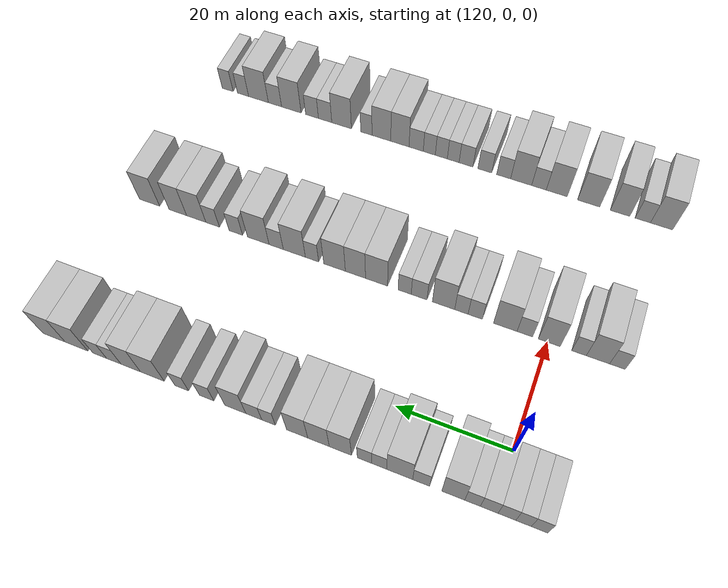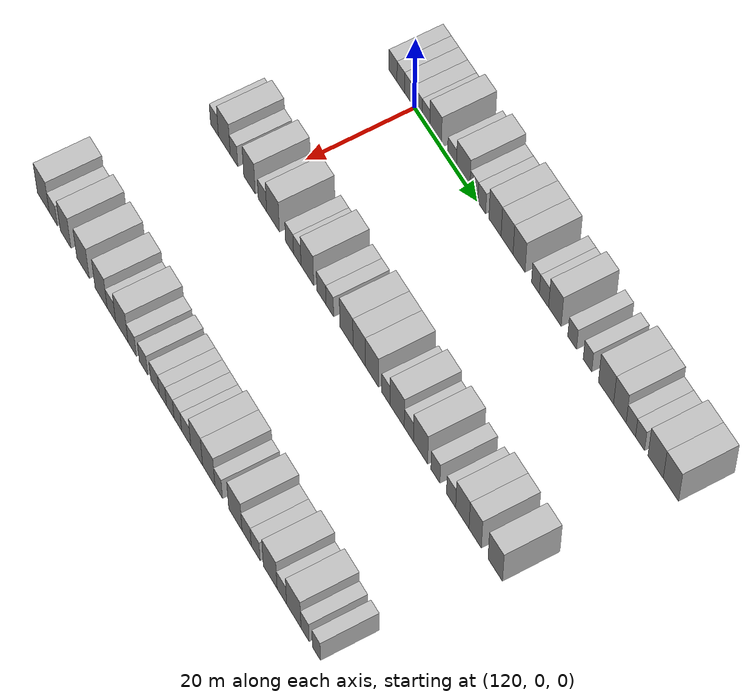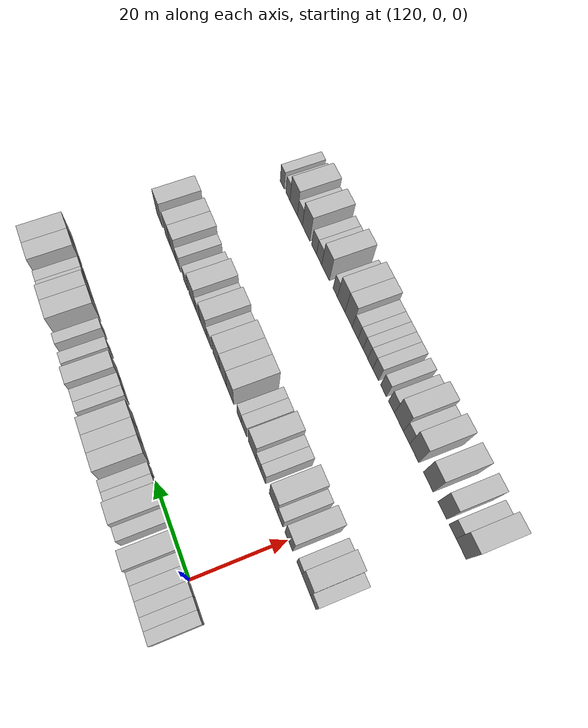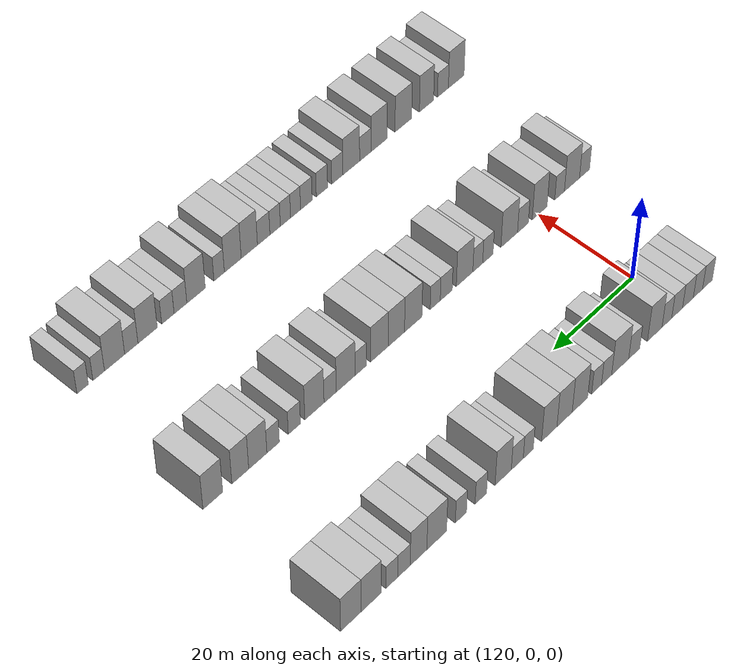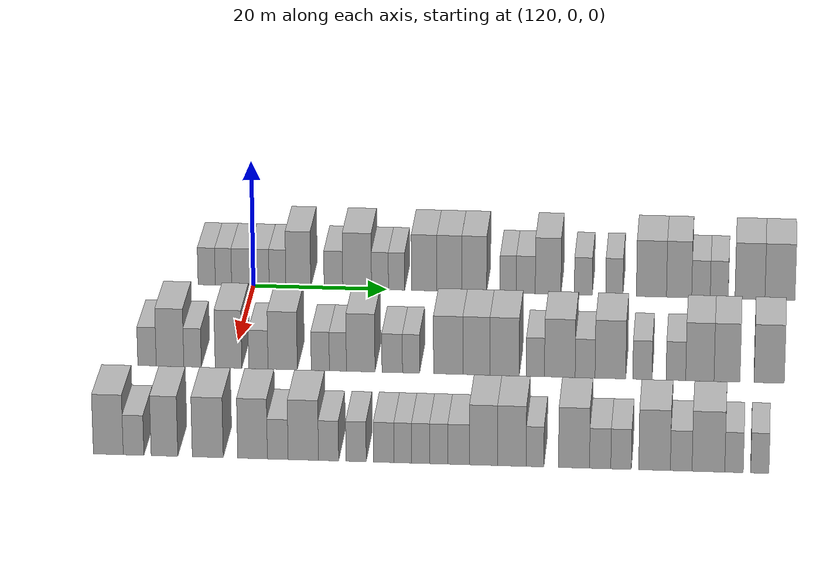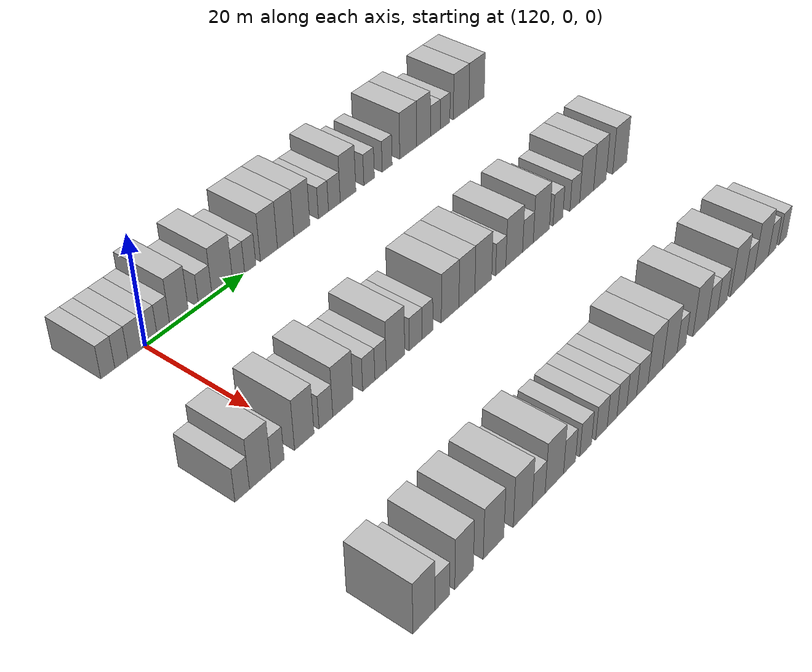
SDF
<sdf version="1.6">
 <world name="default">
  <model name="building_776">
   <static>1</static>
   <pose>115.0000 -7.0693 0 0.000000 0.000000 0.000000</pose>
   <link name="link">
    <pose>0 0 3.00 0 0 0</pose>
    <collision name="collision"><geometry><box><size>10.0000 2.5950 6.0000</size></box></geometry></collision>
    <visual name="visual">
     <cast_shadows>0</cast_shadows>
     <geometry><box><size>10.0000 2.5950 6.0000</size></box></geometry>
     <material>
      <script>
       <uri>model://HANNAS_wall/materials/scripts</uri>
       <uri>model://HANNAS_wall/materials/textures</uri>
       <name>vrc/HANNAS_wall</name>
      </script>
     </material>
    </visual>
   </link>
  </model>
  <model name="building_777">
   <static>1</static>
   <pose>115.0000 -4.5453 0 0.000000 0.000000 0.000000</pose>
   <link name="link">
    <pose>0 0 3.00 0 0 0</pose>
    <collision name="collision"><geometry><box><size>10.0000 2.4531 6.0000</size></box></geometry></collision>
    <visual name="visual">
     <cast_shadows>0</cast_shadows>
     <geometry><box><size>10.0000 2.4531 6.0000</size></box></geometry>
     <material>
      <script>
       <uri>model://HANNAS_wall/materials/scripts</uri>
       <uri>model://HANNAS_wall/materials/textures</uri>
       <name>vrc/HANNAS_wall</name>
      </script>
     </material>
    </visual>
   </link>
  </model>
  <model name="building_778">
   <static>1</static>
   <pose>115.0000 -1.9095 0 0.000000 0.000000 0.000000</pose>
   <link name="link">
    <pose>0 0 3.00 0 0 0</pose>
    <collision name="collision"><geometry><box><size>10.0000 2.8186 6.0000</size></box></geometry></collision>
    <visual name="visual">
     <cast_shadows>0</cast_shadows>
     <geometry><box><size>10.0000 2.8186 6.0000</size></box></geometry>
     <material>
      <script>
       <uri>model://HANNAS_wall/materials/scripts</uri>
       <uri>model://HANNAS_wall/materials/textures</uri>
       <name>vrc/HANNAS_wall</name>
      </script>
     </material>
    </visual>
   </link>
  </model>
  <model name="building_779">
   <static>1</static>
   <pose>115.0000 0.9136 0 0.000000 0.000000 0.000000</pose>
   <link name="link">
    <pose>0 0 3.00 0 0 0</pose>
    <collision name="collision"><geometry><box><size>10.0000 2.8276 6.0000</size></box></geometry></collision>
    <visual name="visual">
     <cast_shadows>0</cast_shadows>
     <geometry><box><size>10.0000 2.8276 6.0000</size></box></geometry>
     <material>
      <script>
       <uri>model://HANNAS_wall/materials/scripts</uri>
       <uri>model://HANNAS_wall/materials/textures</uri>
       <name>vrc/HANNAS_wall</name>
      </script>
     </material>
    </visual>
   </link>
  </model>
  <model name="building_780">
   <static>1</static>
   <pose>115.0000 3.5864 0 0.000000 0.000000 0.000000</pose>
   <link name="link">
    <pose>0 0 3.00 0 0 0</pose>
    <collision name="collision"><geometry><box><size>10.0000 2.5179 6.0000</size></box></geometry></collision>
    <visual name="visual">
     <cast_shadows>0</cast_shadows>
     <geometry><box><size>10.0000 2.5179 6.0000</size></box></geometry>
     <material>
      <script>
       <uri>model://HANNAS_wall/materials/scripts</uri>
       <uri>model://HANNAS_wall/materials/textures</uri>
       <name>vrc/HANNAS_wall</name>
      </script>
     </material>
    </visual>
   </link>
  </model>
  <model name="building_781">
   <static>1</static>
   <pose>115.0000 6.7138 0 0.000000 0.000000 0.000000</pose>
   <link name="link">
    <pose>0 0 4.50 0 0 0</pose>
    <collision name="collision"><geometry><box><size>10.0000 3.7371 9.0000</size></box></geometry></collision>
    <visual name="visual">
     <cast_shadows>0</cast_shadows>
     <geometry><box><size>10.0000 3.7371 9.0000</size></box></geometry>
     <material>
      <script>
       <uri>model://HANNAS_wall/materials/scripts</uri>
       <uri>model://HANNAS_wall/materials/textures</uri>
       <name>vrc/HANNAS_wall</name>
      </script>
     </material>
    </visual>
   </link>
  </model>
  <model name="building_782">
   <static>1</static>
   <pose>115.0000 11.9819 0 0.000000 0.000000 0.000000</pose>
   <link name="link">
    <pose>0 0 3.00 0 0 0</pose>
    <collision name="collision"><geometry><box><size>10.0000 2.7990 6.0000</size></box></geometry></collision>
    <visual name="visual">
     <cast_shadows>0</cast_shadows>
     <geometry><box><size>10.0000 2.7990 6.0000</size></box></geometry>
     <material>
      <script>
       <uri>model://HANNAS_wall/materials/scripts</uri>
       <uri>model://HANNAS_wall/materials/textures</uri>
       <name>vrc/HANNAS_wall</name>
      </script>
     </material>
    </visual>
   </link>
  </model>
  <model name="building_783">
   <static>1</static>
   <pose>115.0000 15.5402 0 0.000000 0.000000 0.000000</pose>
   <link name="link">
    <pose>0 0 4.50 0 0 0</pose>
    <collision name="collision"><geometry><box><size>10.0000 4.3176 9.0000</size></box></geometry></collision>
    <visual name="visual">
     <cast_shadows>0</cast_shadows>
     <geometry><box><size>10.0000 4.3176 9.0000</size></box></geometry>
     <material>
      <script>
       <uri>model://HANNAS_wall/materials/scripts</uri>
       <uri>model://HANNAS_wall/materials/textures</uri>
       <name>vrc/HANNAS_wall</name>
      </script>
     </material>
    </visual>
   </link>
  </model>
  <model name="building_784">
   <static>1</static>
   <pose>115.0000 18.9699 0 0.000000 0.000000 0.000000</pose>
   <link name="link">
    <pose>0 0 3.00 0 0 0</pose>
    <collision name="collision"><geometry><box><size>10.0000 2.5419 6.0000</size></box></geometry></collision>
    <visual name="visual">
     <cast_shadows>0</cast_shadows>
     <geometry><box><size>10.0000 2.5419 6.0000</size></box></geometry>
     <material>
      <script>
       <uri>model://HANNAS_wall/materials/scripts</uri>
       <uri>model://HANNAS_wall/materials/textures</uri>
       <name>vrc/HANNAS_wall</name>
      </script>
     </material>
    </visual>
   </link>
  </model>
  <model name="building_785">
   <static>1</static>
   <pose>115.0000 21.4618 0 0.000000 0.000000 0.000000</pose>
   <link name="link">
    <pose>0 0 3.00 0 0 0</pose>
    <collision name="collision"><geometry><box><size>10.0000 2.4420 6.0000</size></box></geometry></collision>
    <visual name="visual">
     <cast_shadows>0</cast_shadows>
     <geometry><box><size>10.0000 2.4420 6.0000</size></box></geometry>
     <material>
      <script>
       <uri>model://HANNAS_wall/materials/scripts</uri>
       <uri>model://HANNAS_wall/materials/textures</uri>
       <name>vrc/HANNAS_wall</name>
      </script>
     </material>
    </visual>
   </link>
  </model>
  <model name="building_786">
   <static>1</static>
   <pose>115.0000 25.5890 0 0.000000 0.000000 0.000000</pose>
   <link name="link">
    <pose>0 0 4.50 0 0 0</pose>
    <collision name="collision"><geometry><box><size>10.0000 3.8123 9.0000</size></box></geometry></collision>
    <visual name="visual">
     <cast_shadows>0</cast_shadows>
     <geometry><box><size>10.0000 3.8123 9.0000</size></box></geometry>
     <material>
      <script>
       <uri>model://HANNAS_wall/materials/scripts</uri>
       <uri>model://HANNAS_wall/materials/textures</uri>
       <name>vrc/HANNAS_wall</name>
      </script>
     </material>
    </visual>
   </link>
  </model>
  <model name="building_787">
   <static>1</static>
   <pose>115.0000 29.3592 0 0.000000 0.000000 0.000000</pose>
   <link name="link">
    <pose>0 0 4.50 0 0 0</pose>
    <collision name="collision"><geometry><box><size>10.0000 3.7281 9.0000</size></box></geometry></collision>
    <visual name="visual">
     <cast_shadows>0</cast_shadows>
     <geometry><box><size>10.0000 3.7281 9.0000</size></box></geometry>
     <material>
      <script>
       <uri>model://HANNAS_wall/materials/scripts</uri>
       <uri>model://HANNAS_wall/materials/textures</uri>
       <name>vrc/HANNAS_wall</name>
      </script>
     </material>
    </visual>
   </link>
  </model>
  <model name="building_788">
   <static>1</static>
   <pose>115.0000 33.0868 0 0.000000 0.000000 0.000000</pose>
   <link name="link">
    <pose>0 0 4.50 0 0 0</pose>
    <collision name="collision"><geometry><box><size>10.0000 3.7270 9.0000</size></box></geometry></collision>
    <visual name="visual">
     <cast_shadows>0</cast_shadows>
     <geometry><box><size>10.0000 3.7270 9.0000</size></box></geometry>
     <material>
      <script>
       <uri>model://HANNAS_wall/materials/scripts</uri>
       <uri>model://HANNAS_wall/materials/textures</uri>
       <name>vrc/HANNAS_wall</name>
      </script>
     </material>
    </visual>
   </link>
  </model>
  <model name="building_789">
   <static>1</static>
   <pose>115.0000 38.1543 0 0.000000 0.000000 0.000000</pose>
   <link name="link">
    <pose>0 0 3.00 0 0 0</pose>
    <collision name="collision"><geometry><box><size>10.0000 2.4081 6.0000</size></box></geometry></collision>
    <visual name="visual">
     <cast_shadows>0</cast_shadows>
     <geometry><box><size>10.0000 2.4081 6.0000</size></box></geometry>
     <material>
      <script>
       <uri>model://HANNAS_wall/materials/scripts</uri>
       <uri>model://HANNAS_wall/materials/textures</uri>
       <name>vrc/HANNAS_wall</name>
      </script>
     </material>
    </visual>
   </link>
  </model>
  <model name="building_790">
   <static>1</static>
   <pose>115.0000 40.7811 0 0.000000 0.000000 0.000000</pose>
   <link name="link">
    <pose>0 0 3.00 0 0 0</pose>
    <collision name="collision"><geometry><box><size>10.0000 2.8453 6.0000</size></box></geometry></collision>
    <visual name="visual">
     <cast_shadows>0</cast_shadows>
     <geometry><box><size>10.0000 2.8453 6.0000</size></box></geometry>
     <material>
      <script>
       <uri>model://HANNAS_wall/materials/scripts</uri>
       <uri>model://HANNAS_wall/materials/textures</uri>
       <name>vrc/HANNAS_wall</name>
      </script>
     </material>
    </visual>
   </link>
  </model>
  <model name="building_791">
   <static>1</static>
   <pose>115.0000 44.1209 0 0.000000 0.000000 0.000000</pose>
   <link name="link">
    <pose>0 0 4.50 0 0 0</pose>
    <collision name="collision"><geometry><box><size>10.0000 3.8343 9.0000</size></box></geometry></collision>
    <visual name="visual">
     <cast_shadows>0</cast_shadows>
     <geometry><box><size>10.0000 3.8343 9.0000</size></box></geometry>
     <material>
      <script>
       <uri>model://HANNAS_wall/materials/scripts</uri>
       <uri>model://HANNAS_wall/materials/textures</uri>
       <name>vrc/HANNAS_wall</name>
      </script>
     </material>
    </visual>
   </link>
  </model>
  <model name="building_792">
   <static>1</static>
   <pose>115.0000 49.3698 0 0.000000 0.000000 0.000000</pose>
   <link name="link">
    <pose>0 0 3.00 0 0 0</pose>
    <collision name="collision"><geometry><box><size>10.0000 2.6636 6.0000</size></box></geometry></collision>
    <visual name="visual">
     <cast_shadows>0</cast_shadows>
     <geometry><box><size>10.0000 2.6636 6.0000</size></box></geometry>
     <material>
      <script>
       <uri>model://HANNAS_wall/materials/scripts</uri>
       <uri>model://HANNAS_wall/materials/textures</uri>
       <name>vrc/HANNAS_wall</name>
      </script>
     </material>
    </visual>
   </link>
  </model>
  <model name="building_793">
   <static>1</static>
   <pose>115.0000 53.9868 0 0.000000 0.000000 0.000000</pose>
   <link name="link">
    <pose>0 0 3.00 0 0 0</pose>
    <collision name="collision"><geometry><box><size>10.0000 2.5704 6.0000</size></box></geometry></collision>
    <visual name="visual">
     <cast_shadows>0</cast_shadows>
     <geometry><box><size>10.0000 2.5704 6.0000</size></box></geometry>
     <material>
      <script>
       <uri>model://HANNAS_wall/materials/scripts</uri>
       <uri>model://HANNAS_wall/materials/textures</uri>
       <name>vrc/HANNAS_wall</name>
      </script>
     </material>
    </visual>
   </link>
  </model>
  <model name="building_794">
   <static>1</static>
   <pose>115.0000 59.5162 0 0.000000 0.000000 0.000000</pose>
   <link name="link">
    <pose>0 0 4.50 0 0 0</pose>
    <collision name="collision"><geometry><box><size>10.0000 4.4882 9.0000</size></box></geometry></collision>
    <visual name="visual">
     <cast_shadows>0</cast_shadows>
     <geometry><box><size>10.0000 4.4882 9.0000</size></box></geometry>
     <material>
      <script>
       <uri>model://HANNAS_wall/materials/scripts</uri>
       <uri>model://HANNAS_wall/materials/textures</uri>
       <name>vrc/HANNAS_wall</name>
      </script>
     </material>
    </visual>
   </link>
  </model>
  <model name="building_795">
   <static>1</static>
   <pose>115.0000 63.6334 0 0.000000 0.000000 0.000000</pose>
   <link name="link">
    <pose>0 0 4.50 0 0 0</pose>
    <collision name="collision"><geometry><box><size>10.0000 3.7463 9.0000</size></box></geometry></collision>
    <visual name="visual">
     <cast_shadows>0</cast_shadows>
     <geometry><box><size>10.0000 3.7463 9.0000</size></box></geometry>
     <material>
      <script>
       <uri>model://HANNAS_wall/materials/scripts</uri>
       <uri>model://HANNAS_wall/materials/textures</uri>
       <name>vrc/HANNAS_wall</name>
      </script>
     </material>
    </visual>
   </link>
  </model>
  <model name="building_796">
   <static>1</static>
   <pose>115.0000 66.8868 0 0.000000 0.000000 0.000000</pose>
   <link name="link">
    <pose>0 0 3.00 0 0 0</pose>
    <collision name="collision"><geometry><box><size>10.0000 2.7603 6.0000</size></box></geometry></collision>
    <visual name="visual">
     <cast_shadows>0</cast_shadows>
     <geometry><box><size>10.0000 2.7603 6.0000</size></box></geometry>
     <material>
      <script>
       <uri>model://HANNAS_wall/materials/scripts</uri>
       <uri>model://HANNAS_wall/materials/textures</uri>
       <name>vrc/HANNAS_wall</name>
      </script>
     </material>
    </visual>
   </link>
  </model>
  <model name="building_797">
   <static>1</static>
   <pose>115.0000 69.6013 0 0.000000 0.000000 0.000000</pose>
   <link name="link">
    <pose>0 0 3.00 0 0 0</pose>
    <collision name="collision"><geometry><box><size>10.0000 2.6687 6.0000</size></box></geometry></collision>
    <visual name="visual">
     <cast_shadows>0</cast_shadows>
     <geometry><box><size>10.0000 2.6687 6.0000</size></box></geometry>
     <material>
      <script>
       <uri>model://HANNAS_wall/materials/scripts</uri>
       <uri>model://HANNAS_wall/materials/textures</uri>
       <name>vrc/HANNAS_wall</name>
      </script>
     </material>
    </visual>
   </link>
  </model>
  <model name="building_798">
   <static>1</static>
   <pose>115.0000 74.1589 0 0.000000 0.000000 0.000000</pose>
   <link name="link">
    <pose>0 0 4.50 0 0 0</pose>
    <collision name="collision"><geometry><box><size>10.0000 4.4465 9.0000</size></box></geometry></collision>
    <visual name="visual">
     <cast_shadows>0</cast_shadows>
     <geometry><box><size>10.0000 4.4465 9.0000</size></box></geometry>
     <material>
      <script>
       <uri>model://HANNAS_wall/materials/scripts</uri>
       <uri>model://HANNAS_wall/materials/textures</uri>
       <name>vrc/HANNAS_wall</name>
      </script>
     </material>
    </visual>
   </link>
  </model>
  <model name="building_799">
   <static>1</static>
   <pose>115.0000 78.6103 0 0.000000 0.000000 0.000000</pose>
   <link name="link">
    <pose>0 0 4.50 0 0 0</pose>
    <collision name="collision"><geometry><box><size>10.0000 4.4563 9.0000</size></box></geometry></collision>
    <visual name="visual">
     <cast_shadows>0</cast_shadows>
     <geometry><box><size>10.0000 4.4563 9.0000</size></box></geometry>
     <material>
      <script>
       <uri>model://HANNAS_wall/materials/scripts</uri>
       <uri>model://HANNAS_wall/materials/textures</uri>
       <name>vrc/HANNAS_wall</name>
      </script>
     </material>
    </visual>
   </link>
  </model>
  <model name="building_998">
   <static>1</static>
   <pose>145.0000 -12.0928 0 0.000000 0.000000 0.000000</pose>
   <link name="link">
    <pose>0 0 3.00 0 0 0</pose>
    <collision name="collision"><geometry><box><size>10.0000 2.6621 6.0000</size></box></geometry></collision>
    <visual name="visual">
     <cast_shadows>0</cast_shadows>
     <geometry><box><size>10.0000 2.6621 6.0000</size></box></geometry>
     <material>
      <script>
       <uri>model://HANNAS_wall/materials/scripts</uri>
       <uri>model://HANNAS_wall/materials/textures</uri>
       <name>vrc/HANNAS_wall</name>
      </script>
     </material>
    </visual>
   </link>
  </model>
  <model name="building_999">
   <static>1</static>
   <pose>145.0000 -8.7662 0 0.000000 0.000000 0.000000</pose>
   <link name="link">
    <pose>0 0 4.50 0 0 0</pose>
    <collision name="collision"><geometry><box><size>10.0000 3.9911 9.0000</size></box></geometry></collision>
    <visual name="visual">
     <cast_shadows>0</cast_shadows>
     <geometry><box><size>10.0000 3.9911 9.0000</size></box></geometry>
     <material>
      <script>
       <uri>model://HANNAS_wall/materials/scripts</uri>
       <uri>model://HANNAS_wall/materials/textures</uri>
       <name>vrc/HANNAS_wall</name>
      </script>
     </material>
    </visual>
   </link>
  </model>
  <model name="building_1000">
   <static>1</static>
   <pose>145.0000 -5.5079 0 0.000000 0.000000 0.000000</pose>
   <link name="link">
    <pose>0 0 3.00 0 0 0</pose>
    <collision name="collision"><geometry><box><size>10.0000 2.5254 6.0000</size></box></geometry></collision>
    <visual name="visual">
     <cast_shadows>0</cast_shadows>
     <geometry><box><size>10.0000 2.5254 6.0000</size></box></geometry>
     <material>
      <script>
       <uri>model://HANNAS_wall/materials/scripts</uri>
       <uri>model://HANNAS_wall/materials/textures</uri>
       <name>vrc/HANNAS_wall</name>
      </script>
     </material>
    </visual>
   </link>
  </model>
  <model name="building_1001">
   <static>1</static>
   <pose>145.0000 -0.3217 0 0.000000 0.000000 0.000000</pose>
   <link name="link">
    <pose>0 0 4.50 0 0 0</pose>
    <collision name="collision"><geometry><box><size>10.0000 3.8470 9.0000</size></box></geometry></collision>
    <visual name="visual">
     <cast_shadows>0</cast_shadows>
     <geometry><box><size>10.0000 3.8470 9.0000</size></box></geometry>
     <material>
      <script>
       <uri>model://HANNAS_wall/materials/scripts</uri>
       <uri>model://HANNAS_wall/materials/textures</uri>
       <name>vrc/HANNAS_wall</name>
      </script>
     </material>
    </visual>
   </link>
  </model>
  <model name="building_1002">
   <static>1</static>
   <pose>145.0000 3.9910 0 0.000000 0.000000 0.000000</pose>
   <link name="link">
    <pose>0 0 3.00 0 0 0</pose>
    <collision name="collision"><geometry><box><size>10.0000 2.7786 6.0000</size></box></geometry></collision>
    <visual name="visual">
     <cast_shadows>0</cast_shadows>
     <geometry><box><size>10.0000 2.7786 6.0000</size></box></geometry>
     <material>
      <script>
       <uri>model://HANNAS_wall/materials/scripts</uri>
       <uri>model://HANNAS_wall/materials/textures</uri>
       <name>vrc/HANNAS_wall</name>
      </script>
     </material>
    </visual>
   </link>
  </model>
  <model name="building_1003">
   <static>1</static>
   <pose>145.0000 7.4891 0 0.000000 0.000000 0.000000</pose>
   <link name="link">
    <pose>0 0 4.50 0 0 0</pose>
    <collision name="collision"><geometry><box><size>10.0000 4.2175 9.0000</size></box></geometry></collision>
    <visual name="visual">
     <cast_shadows>0</cast_shadows>
     <geometry><box><size>10.0000 4.2175 9.0000</size></box></geometry>
     <material>
      <script>
       <uri>model://HANNAS_wall/materials/scripts</uri>
       <uri>model://HANNAS_wall/materials/textures</uri>
       <name>vrc/HANNAS_wall</name>
      </script>
     </material>
    </visual>
   </link>
  </model>
  <model name="building_1004">
   <static>1</static>
   <pose>145.0000 12.9054 0 0.000000 0.000000 0.000000</pose>
   <link name="link">
    <pose>0 0 3.00 0 0 0</pose>
    <collision name="collision"><geometry><box><size>10.0000 2.6150 6.0000</size></box></geometry></collision>
    <visual name="visual">
     <cast_shadows>0</cast_shadows>
     <geometry><box><size>10.0000 2.6150 6.0000</size></box></geometry>
     <material>
      <script>
       <uri>model://HANNAS_wall/materials/scripts</uri>
       <uri>model://HANNAS_wall/materials/textures</uri>
       <name>vrc/HANNAS_wall</name>
      </script>
     </material>
    </visual>
   </link>
  </model>
  <model name="building_1005">
   <static>1</static>
   <pose>145.0000 15.4376 0 0.000000 0.000000 0.000000</pose>
   <link name="link">
    <pose>0 0 3.00 0 0 0</pose>
    <collision name="collision"><geometry><box><size>10.0000 2.4495 6.0000</size></box></geometry></collision>
    <visual name="visual">
     <cast_shadows>0</cast_shadows>
     <geometry><box><size>10.0000 2.4495 6.0000</size></box></geometry>
     <material>
      <script>
       <uri>model://HANNAS_wall/materials/scripts</uri>
       <uri>model://HANNAS_wall/materials/textures</uri>
       <name>vrc/HANNAS_wall</name>
      </script>
     </material>
    </visual>
   </link>
  </model>
  <model name="building_1006">
   <static>1</static>
   <pose>145.0000 18.7186 0 0.000000 0.000000 0.000000</pose>
   <link name="link">
    <pose>0 0 4.50 0 0 0</pose>
    <collision name="collision"><geometry><box><size>10.0000 4.1124 9.0000</size></box></geometry></collision>
    <visual name="visual">
     <cast_shadows>0</cast_shadows>
     <geometry><box><size>10.0000 4.1124 9.0000</size></box></geometry>
     <material>
      <script>
       <uri>model://HANNAS_wall/materials/scripts</uri>
       <uri>model://HANNAS_wall/materials/textures</uri>
       <name>vrc/HANNAS_wall</name>
      </script>
     </material>
    </visual>
   </link>
  </model>
  <model name="building_1007">
   <static>1</static>
   <pose>145.0000 23.2475 0 0.000000 0.000000 0.000000</pose>
   <link name="link">
    <pose>0 0 3.00 0 0 0</pose>
    <collision name="collision"><geometry><box><size>10.0000 2.9454 6.0000</size></box></geometry></collision>
    <visual name="visual">
     <cast_shadows>0</cast_shadows>
     <geometry><box><size>10.0000 2.9454 6.0000</size></box></geometry>
     <material>
      <script>
       <uri>model://HANNAS_wall/materials/scripts</uri>
       <uri>model://HANNAS_wall/materials/textures</uri>
       <name>vrc/HANNAS_wall</name>
      </script>
     </material>
    </visual>
   </link>
  </model>
  <model name="building_1008">
   <static>1</static>
   <pose>145.0000 25.9500 0 0.000000 0.000000 0.000000</pose>
   <link name="link">
    <pose>0 0 3.00 0 0 0</pose>
    <collision name="collision"><geometry><box><size>10.0000 2.4594 6.0000</size></box></geometry></collision>
    <visual name="visual">
     <cast_shadows>0</cast_shadows>
     <geometry><box><size>10.0000 2.4594 6.0000</size></box></geometry>
     <material>
      <script>
       <uri>model://HANNAS_wall/materials/scripts</uri>
       <uri>model://HANNAS_wall/materials/textures</uri>
       <name>vrc/HANNAS_wall</name>
      </script>
     </material>
    </visual>
   </link>
  </model>
  <model name="building_1009">
   <static>1</static>
   <pose>145.0000 31.2787 0 0.000000 0.000000 0.000000</pose>
   <link name="link">
    <pose>0 0 4.50 0 0 0</pose>
    <collision name="collision"><geometry><box><size>10.0000 4.1981 9.0000</size></box></geometry></collision>
    <visual name="visual">
     <cast_shadows>0</cast_shadows>
     <geometry><box><size>10.0000 4.1981 9.0000</size></box></geometry>
     <material>
      <script>
       <uri>model://HANNAS_wall/materials/scripts</uri>
       <uri>model://HANNAS_wall/materials/textures</uri>
       <name>vrc/HANNAS_wall</name>
      </script>
     </material>
    </visual>
   </link>
  </model>
  <model name="building_1010">
   <static>1</static>
   <pose>145.0000 35.3195 0 0.000000 0.000000 0.000000</pose>
   <link name="link">
    <pose>0 0 4.50 0 0 0</pose>
    <collision name="collision"><geometry><box><size>10.0000 3.8835 9.0000</size></box></geometry></collision>
    <visual name="visual">
     <cast_shadows>0</cast_shadows>
     <geometry><box><size>10.0000 3.8835 9.0000</size></box></geometry>
     <material>
      <script>
       <uri>model://HANNAS_wall/materials/scripts</uri>
       <uri>model://HANNAS_wall/materials/textures</uri>
       <name>vrc/HANNAS_wall</name>
      </script>
     </material>
    </visual>
   </link>
  </model>
  <model name="building_1011">
   <static>1</static>
   <pose>145.0000 39.3656 0 0.000000 0.000000 0.000000</pose>
   <link name="link">
    <pose>0 0 4.50 0 0 0</pose>
    <collision name="collision"><geometry><box><size>10.0000 4.2087 9.0000</size></box></geometry></collision>
    <visual name="visual">
     <cast_shadows>0</cast_shadows>
     <geometry><box><size>10.0000 4.2087 9.0000</size></box></geometry>
     <material>
      <script>
       <uri>model://HANNAS_wall/materials/scripts</uri>
       <uri>model://HANNAS_wall/materials/textures</uri>
       <name>vrc/HANNAS_wall</name>
      </script>
     </material>
    </visual>
   </link>
  </model>
  <model name="building_1012">
   <static>1</static>
   <pose>145.0000 43.7768 0 0.000000 0.000000 0.000000</pose>
   <link name="link">
    <pose>0 0 3.00 0 0 0</pose>
    <collision name="collision"><geometry><box><size>10.0000 2.6138 6.0000</size></box></geometry></collision>
    <visual name="visual">
     <cast_shadows>0</cast_shadows>
     <geometry><box><size>10.0000 2.6138 6.0000</size></box></geometry>
     <material>
      <script>
       <uri>model://HANNAS_wall/materials/scripts</uri>
       <uri>model://HANNAS_wall/materials/textures</uri>
       <name>vrc/HANNAS_wall</name>
      </script>
     </material>
    </visual>
   </link>
  </model>
  <model name="building_1013">
   <static>1</static>
   <pose>145.0000 47.2758 0 0.000000 0.000000 0.000000</pose>
   <link name="link">
    <pose>0 0 4.50 0 0 0</pose>
    <collision name="collision"><geometry><box><size>10.0000 4.3841 9.0000</size></box></geometry></collision>
    <visual name="visual">
     <cast_shadows>0</cast_shadows>
     <geometry><box><size>10.0000 4.3841 9.0000</size></box></geometry>
     <material>
      <script>
       <uri>model://HANNAS_wall/materials/scripts</uri>
       <uri>model://HANNAS_wall/materials/textures</uri>
       <name>vrc/HANNAS_wall</name>
      </script>
     </material>
    </visual>
   </link>
  </model>
  <model name="building_1014">
   <static>1</static>
   <pose>145.0000 50.8889 0 0.000000 0.000000 0.000000</pose>
   <link name="link">
    <pose>0 0 3.00 0 0 0</pose>
    <collision name="collision"><geometry><box><size>10.0000 2.8421 6.0000</size></box></geometry></collision>
    <visual name="visual">
     <cast_shadows>0</cast_shadows>
     <geometry><box><size>10.0000 2.8421 6.0000</size></box></geometry>
     <material>
      <script>
       <uri>model://HANNAS_wall/materials/scripts</uri>
       <uri>model://HANNAS_wall/materials/textures</uri>
       <name>vrc/HANNAS_wall</name>
      </script>
     </material>
    </visual>
   </link>
  </model>
  <model name="building_1015">
   <static>1</static>
   <pose>145.0000 54.5018 0 0.000000 0.000000 0.000000</pose>
   <link name="link">
    <pose>0 0 4.50 0 0 0</pose>
    <collision name="collision"><geometry><box><size>10.0000 4.3836 9.0000</size></box></geometry></collision>
    <visual name="visual">
     <cast_shadows>0</cast_shadows>
     <geometry><box><size>10.0000 4.3836 9.0000</size></box></geometry>
     <material>
      <script>
       <uri>model://HANNAS_wall/materials/scripts</uri>
       <uri>model://HANNAS_wall/materials/textures</uri>
       <name>vrc/HANNAS_wall</name>
      </script>
     </material>
    </visual>
   </link>
  </model>
  <model name="building_1016">
   <static>1</static>
   <pose>145.0000 59.0712 0 0.000000 0.000000 0.000000</pose>
   <link name="link">
    <pose>0 0 3.00 0 0 0</pose>
    <collision name="collision"><geometry><box><size>10.0000 2.7551 6.0000</size></box></geometry></collision>
    <visual name="visual">
     <cast_shadows>0</cast_shadows>
     <geometry><box><size>10.0000 2.7551 6.0000</size></box></geometry>
     <material>
      <script>
       <uri>model://HANNAS_wall/materials/scripts</uri>
       <uri>model://HANNAS_wall/materials/textures</uri>
       <name>vrc/HANNAS_wall</name>
      </script>
     </material>
    </visual>
   </link>
  </model>
  <model name="building_1017">
   <static>1</static>
   <pose>145.0000 63.8470 0 0.000000 0.000000 0.000000</pose>
   <link name="link">
    <pose>0 0 3.00 0 0 0</pose>
    <collision name="collision"><geometry><box><size>10.0000 2.7966 6.0000</size></box></geometry></collision>
    <visual name="visual">
     <cast_shadows>0</cast_shadows>
     <geometry><box><size>10.0000 2.7966 6.0000</size></box></geometry>
     <material>
      <script>
       <uri>model://HANNAS_wall/materials/scripts</uri>
       <uri>model://HANNAS_wall/materials/textures</uri>
       <name>vrc/HANNAS_wall</name>
      </script>
     </material>
    </visual>
   </link>
  </model>
  <model name="building_1018">
   <static>1</static>
   <pose>145.0000 67.2632 0 0.000000 0.000000 0.000000</pose>
   <link name="link">
    <pose>0 0 4.50 0 0 0</pose>
    <collision name="collision"><geometry><box><size>10.0000 4.0356 9.0000</size></box></geometry></collision>
    <visual name="visual">
     <cast_shadows>0</cast_shadows>
     <geometry><box><size>10.0000 4.0356 9.0000</size></box></geometry>
     <material>
      <script>
       <uri>model://HANNAS_wall/materials/scripts</uri>
       <uri>model://HANNAS_wall/materials/textures</uri>
       <name>vrc/HANNAS_wall</name>
      </script>
     </material>
    </visual>
   </link>
  </model>
  <model name="building_1019">
   <static>1</static>
   <pose>145.0000 71.1309 0 0.000000 0.000000 0.000000</pose>
   <link name="link">
    <pose>0 0 4.50 0 0 0</pose>
    <collision name="collision"><geometry><box><size>10.0000 3.6999 9.0000</size></box></geometry></collision>
    <visual name="visual">
     <cast_shadows>0</cast_shadows>
     <geometry><box><size>10.0000 3.6999 9.0000</size></box></geometry>
     <material>
      <script>
       <uri>model://HANNAS_wall/materials/scripts</uri>
       <uri>model://HANNAS_wall/materials/textures</uri>
       <name>vrc/HANNAS_wall</name>
      </script>
     </material>
    </visual>
   </link>
  </model>
  <model name="building_1020">
   <static>1</static>
   <pose>145.0000 77.1304 0 0.000000 0.000000 0.000000</pose>
   <link name="link">
    <pose>0 0 4.50 0 0 0</pose>
    <collision name="collision"><geometry><box><size>10.0000 4.2992 9.0000</size></box></geometry></collision>
    <visual name="visual">
     <cast_shadows>0</cast_shadows>
     <geometry><box><size>10.0000 4.2992 9.0000</size></box></geometry>
     <material>
      <script>
       <uri>model://HANNAS_wall/materials/scripts</uri>
       <uri>model://HANNAS_wall/materials/textures</uri>
       <name>vrc/HANNAS_wall</name>
      </script>
     </material>
    </visual>
   </link>
  </model>
  <model name="building_1236">
   <static>1</static>
   <pose>175.0000 -13.4818 0 0.000000 0.000000 0.000000</pose>
   <link name="link">
    <pose>0 0 4.50 0 0 0</pose>
    <collision name="collision"><geometry><box><size>10.0000 4.1318 9.0000</size></box></geometry></collision>
    <visual name="visual">
     <cast_shadows>0</cast_shadows>
     <geometry><box><size>10.0000 4.1318 9.0000</size></box></geometry>
     <material>
      <script>
       <uri>model://HANNAS_wall/materials/scripts</uri>
       <uri>model://HANNAS_wall/materials/textures</uri>
       <name>vrc/HANNAS_wall</name>
      </script>
     </material>
    </visual>
   </link>
  </model>
  <model name="building_1237">
   <static>1</static>
   <pose>175.0000 -9.9859 0 0.000000 0.000000 0.000000</pose>
   <link name="link">
    <pose>0 0 3.00 0 0 0</pose>
    <collision name="collision"><geometry><box><size>10.0000 2.8600 6.0000</size></box></geometry></collision>
    <visual name="visual">
     <cast_shadows>0</cast_shadows>
     <geometry><box><size>10.0000 2.8600 6.0000</size></box></geometry>
     <material>
      <script>
       <uri>model://HANNAS_wall/materials/scripts</uri>
       <uri>model://HANNAS_wall/materials/textures</uri>
       <name>vrc/HANNAS_wall</name>
      </script>
     </material>
    </visual>
   </link>
  </model>
  <model name="building_1238">
   <static>1</static>
   <pose>175.0000 -5.7100 0 0.000000 0.000000 0.000000</pose>
   <link name="link">
    <pose>0 0 4.50 0 0 0</pose>
    <collision name="collision"><geometry><box><size>10.0000 3.6917 9.0000</size></box></geometry></collision>
    <visual name="visual">
     <cast_shadows>0</cast_shadows>
     <geometry><box><size>10.0000 3.6917 9.0000</size></box></geometry>
     <material>
      <script>
       <uri>model://HANNAS_wall/materials/scripts</uri>
       <uri>model://HANNAS_wall/materials/textures</uri>
       <name>vrc/HANNAS_wall</name>
      </script>
     </material>
    </visual>
   </link>
  </model>
  <model name="building_1239">
   <static>1</static>
   <pose>175.0000 0.2748 0 0.000000 0.000000 0.000000</pose>
   <link name="link">
    <pose>0 0 4.50 0 0 0</pose>
    <collision name="collision"><geometry><box><size>10.0000 4.2779 9.0000</size></box></geometry></collision>
    <visual name="visual">
     <cast_shadows>0</cast_shadows>
     <geometry><box><size>10.0000 4.2779 9.0000</size></box></geometry>
     <material>
      <script>
       <uri>model://HANNAS_wall/materials/scripts</uri>
       <uri>model://HANNAS_wall/materials/textures</uri>
       <name>vrc/HANNAS_wall</name>
      </script>
     </material>
    </visual>
   </link>
  </model>
  <model name="building_1240">
   <static>1</static>
   <pose>175.0000 6.4629 0 0.000000 0.000000 0.000000</pose>
   <link name="link">
    <pose>0 0 4.50 0 0 0</pose>
    <collision name="collision"><geometry><box><size>10.0000 4.0984 9.0000</size></box></geometry></collision>
    <visual name="visual">
     <cast_shadows>0</cast_shadows>
     <geometry><box><size>10.0000 4.0984 9.0000</size></box></geometry>
     <material>
      <script>
       <uri>model://HANNAS_wall/materials/scripts</uri>
       <uri>model://HANNAS_wall/materials/textures</uri>
       <name>vrc/HANNAS_wall</name>
      </script>
     </material>
    </visual>
   </link>
  </model>
  <model name="building_1241">
   <static>1</static>
   <pose>175.0000 9.9404 0 0.000000 0.000000 0.000000</pose>
   <link name="link">
    <pose>0 0 3.00 0 0 0</pose>
    <collision name="collision"><geometry><box><size>10.0000 2.8564 6.0000</size></box></geometry></collision>
    <visual name="visual">
     <cast_shadows>0</cast_shadows>
     <geometry><box><size>10.0000 2.8564 6.0000</size></box></geometry>
     <material>
      <script>
       <uri>model://HANNAS_wall/materials/scripts</uri>
       <uri>model://HANNAS_wall/materials/textures</uri>
       <name>vrc/HANNAS_wall</name>
      </script>
     </material>
    </visual>
   </link>
  </model>
  <model name="building_1242">
   <static>1</static>
   <pose>175.0000 13.4576 0 0.000000 0.000000 0.000000</pose>
   <link name="link">
    <pose>0 0 4.50 0 0 0</pose>
    <collision name="collision"><geometry><box><size>10.0000 4.1779 9.0000</size></box></geometry></collision>
    <visual name="visual">
     <cast_shadows>0</cast_shadows>
     <geometry><box><size>10.0000 4.1779 9.0000</size></box></geometry>
     <material>
      <script>
       <uri>model://HANNAS_wall/materials/scripts</uri>
       <uri>model://HANNAS_wall/materials/textures</uri>
       <name>vrc/HANNAS_wall</name>
      </script>
     </material>
    </visual>
   </link>
  </model>
  <model name="building_1243">
   <static>1</static>
   <pose>175.0000 16.9371 0 0.000000 0.000000 0.000000</pose>
   <link name="link">
    <pose>0 0 3.00 0 0 0</pose>
    <collision name="collision"><geometry><box><size>10.0000 2.7811 6.0000</size></box></geometry></collision>
    <visual name="visual">
     <cast_shadows>0</cast_shadows>
     <geometry><box><size>10.0000 2.7811 6.0000</size></box></geometry>
     <material>
      <script>
       <uri>model://HANNAS_wall/materials/scripts</uri>
       <uri>model://HANNAS_wall/materials/textures</uri>
       <name>vrc/HANNAS_wall</name>
      </script>
     </material>
    </visual>
   </link>
  </model>
  <model name="building_1244">
   <static>1</static>
   <pose>175.0000 20.7227 0 0.000000 0.000000 0.000000</pose>
   <link name="link">
    <pose>0 0 3.00 0 0 0</pose>
    <collision name="collision"><geometry><box><size>10.0000 2.7902 6.0000</size></box></geometry></collision>
    <visual name="visual">
     <cast_shadows>0</cast_shadows>
     <geometry><box><size>10.0000 2.7902 6.0000</size></box></geometry>
     <material>
      <script>
       <uri>model://HANNAS_wall/materials/scripts</uri>
       <uri>model://HANNAS_wall/materials/textures</uri>
       <name>vrc/HANNAS_wall</name>
      </script>
     </material>
    </visual>
   </link>
  </model>
  <model name="building_1245">
   <static>1</static>
   <pose>175.0000 24.5276 0 0.000000 0.000000 0.000000</pose>
   <link name="link">
    <pose>0 0 3.00 0 0 0</pose>
    <collision name="collision"><geometry><box><size>10.0000 2.8196 6.0000</size></box></geometry></collision>
    <visual name="visual">
     <cast_shadows>0</cast_shadows>
     <geometry><box><size>10.0000 2.8196 6.0000</size></box></geometry>
     <material>
      <script>
       <uri>model://HANNAS_wall/materials/scripts</uri>
       <uri>model://HANNAS_wall/materials/textures</uri>
       <name>vrc/HANNAS_wall</name>
      </script>
     </material>
    </visual>
   </link>
  </model>
  <model name="building_1246">
   <static>1</static>
   <pose>175.0000 27.1449 0 0.000000 0.000000 0.000000</pose>
   <link name="link">
    <pose>0 0 3.00 0 0 0</pose>
    <collision name="collision"><geometry><box><size>10.0000 2.4150 6.0000</size></box></geometry></collision>
    <visual name="visual">
     <cast_shadows>0</cast_shadows>
     <geometry><box><size>10.0000 2.4150 6.0000</size></box></geometry>
     <material>
      <script>
       <uri>model://HANNAS_wall/materials/scripts</uri>
       <uri>model://HANNAS_wall/materials/textures</uri>
       <name>vrc/HANNAS_wall</name>
      </script>
     </material>
    </visual>
   </link>
  </model>
  <model name="building_1247">
   <static>1</static>
   <pose>175.0000 29.5856 0 0.000000 0.000000 0.000000</pose>
   <link name="link">
    <pose>0 0 3.00 0 0 0</pose>
    <collision name="collision"><geometry><box><size>10.0000 2.4665 6.0000</size></box></geometry></collision>
    <visual name="visual">
     <cast_shadows>0</cast_shadows>
     <geometry><box><size>10.0000 2.4665 6.0000</size></box></geometry>
     <material>
      <script>
       <uri>model://HANNAS_wall/materials/scripts</uri>
       <uri>model://HANNAS_wall/materials/textures</uri>
       <name>vrc/HANNAS_wall</name>
      </script>
     </material>
    </visual>
   </link>
  </model>
  <model name="building_1248">
   <static>1</static>
   <pose>175.0000 32.0646 0 0.000000 0.000000 0.000000</pose>
   <link name="link">
    <pose>0 0 3.00 0 0 0</pose>
    <collision name="collision"><geometry><box><size>10.0000 2.4915 6.0000</size></box></geometry></collision>
    <visual name="visual">
     <cast_shadows>0</cast_shadows>
     <geometry><box><size>10.0000 2.4915 6.0000</size></box></geometry>
     <material>
      <script>
       <uri>model://HANNAS_wall/materials/scripts</uri>
       <uri>model://HANNAS_wall/materials/textures</uri>
       <name>vrc/HANNAS_wall</name>
      </script>
     </material>
    </visual>
   </link>
  </model>
  <model name="building_1249">
   <static>1</static>
   <pose>175.0000 34.8000 0 0.000000 0.000000 0.000000</pose>
   <link name="link">
    <pose>0 0 3.00 0 0 0</pose>
    <collision name="collision"><geometry><box><size>10.0000 2.9792 6.0000</size></box></geometry></collision>
    <visual name="visual">
     <cast_shadows>0</cast_shadows>
     <geometry><box><size>10.0000 2.9792 6.0000</size></box></geometry>
     <material>
      <script>
       <uri>model://HANNAS_wall/materials/scripts</uri>
       <uri>model://HANNAS_wall/materials/textures</uri>
       <name>vrc/HANNAS_wall</name>
      </script>
     </material>
    </visual>
   </link>
  </model>
  <model name="building_1250">
   <static>1</static>
   <pose>175.0000 38.2070 0 0.000000 0.000000 0.000000</pose>
   <link name="link">
    <pose>0 0 4.50 0 0 0</pose>
    <collision name="collision"><geometry><box><size>10.0000 3.8348 9.0000</size></box></geometry></collision>
    <visual name="visual">
     <cast_shadows>0</cast_shadows>
     <geometry><box><size>10.0000 3.8348 9.0000</size></box></geometry>
     <material>
      <script>
       <uri>model://HANNAS_wall/materials/scripts</uri>
       <uri>model://HANNAS_wall/materials/textures</uri>
       <name>vrc/HANNAS_wall</name>
      </script>
     </material>
    </visual>
   </link>
  </model>
  <model name="building_1251">
   <static>1</static>
   <pose>175.0000 42.1049 0 0.000000 0.000000 0.000000</pose>
   <link name="link">
    <pose>0 0 4.50 0 0 0</pose>
    <collision name="collision"><geometry><box><size>10.0000 3.9611 9.0000</size></box></geometry></collision>
    <visual name="visual">
     <cast_shadows>0</cast_shadows>
     <geometry><box><size>10.0000 3.9611 9.0000</size></box></geometry>
     <material>
      <script>
       <uri>model://HANNAS_wall/materials/scripts</uri>
       <uri>model://HANNAS_wall/materials/textures</uri>
       <name>vrc/HANNAS_wall</name>
      </script>
     </material>
    </visual>
   </link>
  </model>
  <model name="building_1252">
   <static>1</static>
   <pose>175.0000 45.2934 0 0.000000 0.000000 0.000000</pose>
   <link name="link">
    <pose>0 0 3.00 0 0 0</pose>
    <collision name="collision"><geometry><box><size>10.0000 2.4159 6.0000</size></box></geometry></collision>
    <visual name="visual">
     <cast_shadows>0</cast_shadows>
     <geometry><box><size>10.0000 2.4159 6.0000</size></box></geometry>
     <material>
      <script>
       <uri>model://HANNAS_wall/materials/scripts</uri>
       <uri>model://HANNAS_wall/materials/textures</uri>
       <name>vrc/HANNAS_wall</name>
      </script>
     </material>
    </visual>
   </link>
  </model>
  <model name="building_1253">
   <static>1</static>
   <pose>175.0000 50.6238 0 0.000000 0.000000 0.000000</pose>
   <link name="link">
    <pose>0 0 4.50 0 0 0</pose>
    <collision name="collision"><geometry><box><size>10.0000 4.2450 9.0000</size></box></geometry></collision>
    <visual name="visual">
     <cast_shadows>0</cast_shadows>
     <geometry><box><size>10.0000 4.2450 9.0000</size></box></geometry>
     <material>
      <script>
       <uri>model://HANNAS_wall/materials/scripts</uri>
       <uri>model://HANNAS_wall/materials/textures</uri>
       <name>vrc/HANNAS_wall</name>
      </script>
     </material>
    </visual>
   </link>
  </model>
  <model name="building_1254">
   <static>1</static>
   <pose>175.0000 54.1991 0 0.000000 0.000000 0.000000</pose>
   <link name="link">
    <pose>0 0 3.00 0 0 0</pose>
    <collision name="collision"><geometry><box><size>10.0000 2.9056 6.0000</size></box></geometry></collision>
    <visual name="visual">
     <cast_shadows>0</cast_shadows>
     <geometry><box><size>10.0000 2.9056 6.0000</size></box></geometry>
     <material>
      <script>
       <uri>model://HANNAS_wall/materials/scripts</uri>
       <uri>model://HANNAS_wall/materials/textures</uri>
       <name>vrc/HANNAS_wall</name>
      </script>
     </material>
    </visual>
   </link>
  </model>
  <model name="building_1255">
   <static>1</static>
   <pose>175.0000 57.0560 0 0.000000 0.000000 0.000000</pose>
   <link name="link">
    <pose>0 0 3.00 0 0 0</pose>
    <collision name="collision"><geometry><box><size>10.0000 2.8080 6.0000</size></box></geometry></collision>
    <visual name="visual">
     <cast_shadows>0</cast_shadows>
     <geometry><box><size>10.0000 2.8080 6.0000</size></box></geometry>
     <material>
      <script>
       <uri>model://HANNAS_wall/materials/scripts</uri>
       <uri>model://HANNAS_wall/materials/textures</uri>
       <name>vrc/HANNAS_wall</name>
      </script>
     </material>
    </visual>
   </link>
  </model>
  <model name="building_1256">
   <static>1</static>
   <pose>175.0000 61.6216 0 0.000000 0.000000 0.000000</pose>
   <link name="link">
    <pose>0 0 4.50 0 0 0</pose>
    <collision name="collision"><geometry><box><size>10.0000 4.3232 9.0000</size></box></geometry></collision>
    <visual name="visual">
     <cast_shadows>0</cast_shadows>
     <geometry><box><size>10.0000 4.3232 9.0000</size></box></geometry>
     <material>
      <script>
       <uri>model://HANNAS_wall/materials/scripts</uri>
       <uri>model://HANNAS_wall/materials/textures</uri>
       <name>vrc/HANNAS_wall</name>
      </script>
     </material>
    </visual>
   </link>
  </model>
  <model name="building_1257">
   <static>1</static>
   <pose>175.0000 65.2620 0 0.000000 0.000000 0.000000</pose>
   <link name="link">
    <pose>0 0 3.00 0 0 0</pose>
    <collision name="collision"><geometry><box><size>10.0000 2.9576 6.0000</size></box></geometry></collision>
    <visual name="visual">
     <cast_shadows>0</cast_shadows>
     <geometry><box><size>10.0000 2.9576 6.0000</size></box></geometry>
     <material>
      <script>
       <uri>model://HANNAS_wall/materials/scripts</uri>
       <uri>model://HANNAS_wall/materials/textures</uri>
       <name>vrc/HANNAS_wall</name>
      </script>
     </material>
    </visual>
   </link>
  </model>
  <model name="building_1258">
   <static>1</static>
   <pose>175.0000 68.9715 0 0.000000 0.000000 0.000000</pose>
   <link name="link">
    <pose>0 0 4.50 0 0 0</pose>
    <collision name="collision"><geometry><box><size>10.0000 4.4614 9.0000</size></box></geometry></collision>
    <visual name="visual">
     <cast_shadows>0</cast_shadows>
     <geometry><box><size>10.0000 4.4614 9.0000</size></box></geometry>
     <material>
      <script>
       <uri>model://HANNAS_wall/materials/scripts</uri>
       <uri>model://HANNAS_wall/materials/textures</uri>
       <name>vrc/HANNAS_wall</name>
      </script>
     </material>
    </visual>
   </link>
  </model>
  <model name="building_1259">
   <static>1</static>
   <pose>175.0000 72.4616 0 0.000000 0.000000 0.000000</pose>
   <link name="link">
    <pose>0 0 3.00 0 0 0</pose>
    <collision name="collision"><geometry><box><size>10.0000 2.5188 6.0000</size></box></geometry></collision>
    <visual name="visual">
     <cast_shadows>0</cast_shadows>
     <geometry><box><size>10.0000 2.5188 6.0000</size></box></geometry>
     <material>
      <script>
       <uri>model://HANNAS_wall/materials/scripts</uri>
       <uri>model://HANNAS_wall/materials/textures</uri>
       <name>vrc/HANNAS_wall</name>
      </script>
     </material>
    </visual>
   </link>
  </model>
  <model name="building_1260">
   <static>1</static>
   <pose>175.0000 75.9633 0 0.000000 0.000000 0.000000</pose>
   <link name="link">
    <pose>0 0 3.00 0 0 0</pose>
    <collision name="collision"><geometry><box><size>10.0000 2.4846 6.0000</size></box></geometry></collision>
    <visual name="visual">
     <cast_shadows>0</cast_shadows>
     <geometry><box><size>10.0000 2.4846 6.0000</size></box></geometry>
     <material>
      <script>
       <uri>model://HANNAS_wall/materials/scripts</uri>
       <uri>model://HANNAS_wall/materials/textures</uri>
       <name>vrc/HANNAS_wall</name>
      </script>
     </material>
    </visual>
   </link>
  </model>
 </world>
</sdf>
